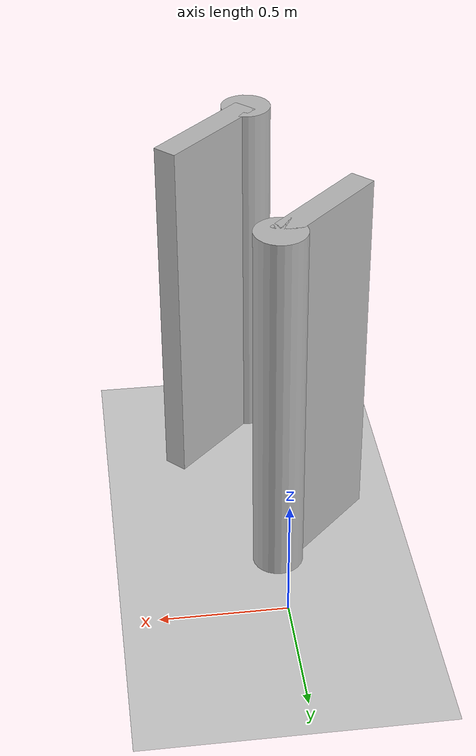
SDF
<sdf version="1.4">
 <world name="default">
  <scene><ambient>0.4 0.4 0.4 1</ambient><background>0.7 0.7 0.7 1</background><shadows>false</shadows></scene>
  <include><uri>model://sun</uri></include>
  <include><uri>model://ground_plane</uri></include>
  <include><uri>model://gate</uri><pose>0 -0.8 0 0 0 0</pose></include>
  <physics type="ode">
   <real_time_update_rate>1000.0</real_time_update_rate>
   <max_step_size>0.001</max_step_size>
   <real_time_factor>1</real_time_factor>
   <ode>
    <solver>
     <type>quick</type>
     <iters>150</iters>
     <precon_iters>0</precon_iters>
     <sor>1.400000</sor>
     <use_dynamic_moi_rescaling>1</use_dynamic_moi_rescaling>
    </solver>
    <constraints>
     <cfm>0.00001</cfm>
     <erp>0.2</erp>
     <contact_max_correcting_vel>2000.000000</contact_max_correcting_vel>
     <contact_surface_layer>0.01000</contact_surface_layer>
    </constraints>
   </ode>
  </physics>
 </world>
</sdf>

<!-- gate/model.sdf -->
<sdf version="1.6">
  <model name="gate">
    <!-- Left Cylinder -->
    <link name="left_cylinder">
      <pose>0 -0.5 0.75 0 0 0</pose>
      <collision name="left_cylinder_collision">
        <geometry>
          <cylinder>
            <radius>0.1</radius>
            <length>1.5</length>
          </cylinder>
        </geometry>
      </collision>
      <visual name="left_cylinder_visual">
        <geometry>
          <cylinder>
            <radius>0.1</radius>
            <length>1.5</length>
          </cylinder>
        </geometry>
      </visual>
    </link>
    <!-- Left Door -->
    <link name="left_door">
      <pose>0.1768 -0.3232 0.75 0 0 0.7854</pose>
      <collision name="left_door_collision">
        <geometry>
          <box>
            <size> 0.5 0.1 1.5</size>
          </box>
        </geometry>
      </collision>
      <visual name="left_door_visual">
        <geometry>
          <box>
            <size> 0.5 0.1 1.5</size>
          </box>
        </geometry>
      </visual>
    </link>

    <!-- Right Cylinder -->
    <link name="right_cylinder">
      <pose>0 0.5 0.75 0 0 0</pose>
      <collision name="right_cylinder_collision">
        <geometry>
          <cylinder>
            <radius>0.1</radius>
            <length>1.5</length>
          </cylinder>
        </geometry>
      </collision>
      <visual name="right_cylinder_visual">
        <geometry>
          <cylinder>
            <radius>0.1</radius>
            <length>1.5</length>
          </cylinder>
        </geometry>
      </visual>
    </link>
    <!-- Right Door -->
    <link name="right_door">
      <pose> -0.1768 0.3232 0.75 0 0 0.7854</pose>
      <collision name="right_door_collision">
        <geometry>
          <box>
            <size>0.5 0.1 1.5</size>
          </box>
        </geometry>
      </collision>
      <visual name="right_door_visual">
        <geometry>
          <box>
            <size>0.5 0.1 1.5</size>
          </box>
        </geometry>
      </visual>
    </link>
  </model>
</sdf>
